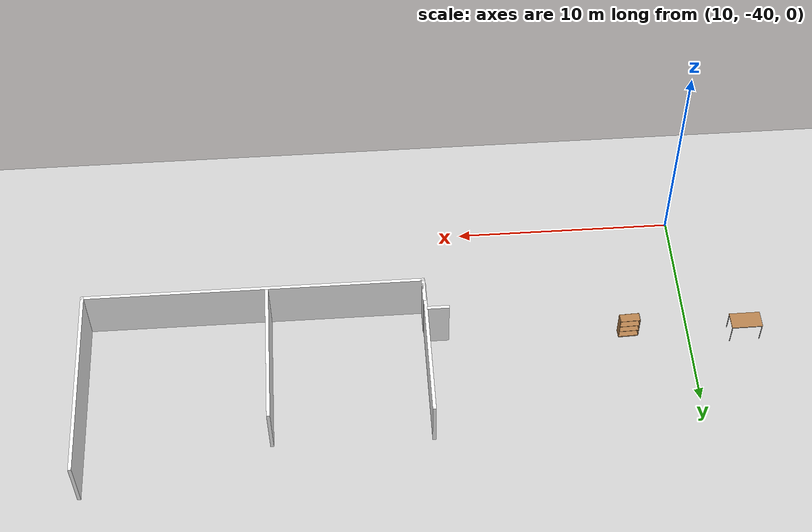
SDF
<sdf version="1.6">
 <world name="default">
  <model name="ground_plane">
   <static>1</static>
   <link name="link">
    <collision name="collision">
     <geometry><plane><normal>0 0 1</normal><size>100 100</size></plane></geometry>
     <surface><friction><ode><mu>100</mu><mu2>50</mu2></ode></friction></surface>
    </collision>
    <visual name="visual">
     <cast_shadows>0</cast_shadows>
     <geometry><plane><normal>0 0 1</normal><size>100 100</size></plane></geometry>
     <material>
      <script>
       <uri>model://office_env/materials/scripts</uri>
       <uri>model://office_env/materials/textures</uri>
       <name>wall</name>
      </script>
     </material>
    </visual>
   </link>
  </model>
  <model name="aule_N">
   <pose>0.1887 -1.4289 0 0 -0 0</pose>
   <link name="Wall_209">
    <collision name="Wall_209_Collision">
     <geometry><box><size>6.75 0.15 2.5</size></box></geometry>
     <pose>0 0 1.25 0 -0 0</pose>
    </collision>
    <visual name="Wall_209_Visual">
     <pose>0 0 1.25 0 -0 0</pose>
     <geometry><box><size>6.75 0.15 2.5</size></box></geometry>
     <material>
      <script>
       <uri>model://office_env/materials/scripts</uri>
       <uri>model://office_env/materials/textures</uri>
       <name>wall</name>
      </script>
      <ambient>1 1 1 1</ambient>
     </material>
    </visual>
    <pose>21.8408 -30.6162 0 0 0 -1.5708</pose>
   </link>
   <link name="Wall_233">
    <collision name="Wall_233_Collision">
     <geometry><box><size>15.5 0.15 2.5</size></box></geometry>
     <pose>0 0 1.25 0 -0 0</pose>
    </collision>
    <visual name="Wall_233_Visual">
     <pose>0 0 1.25 0 -0 0</pose>
     <geometry><box><size>15.5 0.15 2.5</size></box></geometry>
     <material>
      <script>
       <uri>model://office_env/materials/scripts</uri>
       <uri>model://office_env/materials/textures</uri>
       <name>wall</name>
      </script>
      <ambient>1 1 1 1</ambient>
     </material>
    </visual>
    <pose>29.5453 -34.2006 0 0 -0 3.14159</pose>
   </link>
   <link name="Wall_234">
    <collision name="Wall_234_Collision">
     <geometry><box><size>1.25 0.15 2.5</size></box></geometry>
     <pose>0 0 1.25 0 -0 0</pose>
    </collision>
    <visual name="Wall_234_Visual">
     <pose>0 0 1.25 0 -0 0</pose>
     <geometry><box><size>1.25 0.15 2.5</size></box></geometry>
     <material>
      <script>
       <uri>model://office_env/materials/scripts</uri>
       <uri>model://office_env/materials/textures</uri>
       <name>wall</name>
      </script>
      <ambient>1 1 1 1</ambient>
     </material>
    </visual>
    <pose>21.8703 -33.6506 0 0 -0 1.5708</pose>
   </link>
   <link name="Wall_236">
    <collision name="Wall_236_Collision">
     <geometry><box><size>1 0.15 2.5</size></box></geometry>
     <pose>0 0 1.25 0 -0 0</pose>
    </collision>
    <visual name="Wall_236_Visual">
     <pose>0 0 1.25 0 -0 0</pose>
     <geometry><box><size>1 0.15 2.5</size></box></geometry>
     <material>
      <script>
       <uri>model://office_env/materials/scripts</uri>
       <uri>model://office_env/materials/textures</uri>
       <name>wall</name>
      </script>
      <ambient>1 1 1 1</ambient>
     </material>
    </visual>
    <pose>21.2953 -32.6045 0 0 -0 0</pose>
   </link>
   <link name="Wall_240">
    <collision name="Wall_240_Collision">
     <geometry><box><size>6.75 0.15 2.5</size></box></geometry>
     <pose>0 0 1.25 0 -0 0</pose>
    </collision>
    <visual name="Wall_240_Visual">
     <pose>0 0 1.25 0 -0 0</pose>
     <geometry><box><size>6.75 0.15 2.5</size></box></geometry>
     <material>
      <script>
       <uri>model://office_env/materials/scripts</uri>
       <uri>model://office_env/materials/textures</uri>
       <name>wall</name>
      </script>
      <ambient>1 1 1 1</ambient>
     </material>
    </visual>
    <pose>28.9447 -30.738 0 0 0 -1.5708</pose>
   </link>
   <link name="Wall_27">
    <collision name="Wall_27_Collision">
     <geometry><box><size>8.99611 0.15 2.5</size></box></geometry>
     <pose>0 0 1.25 0 -0 0</pose>
    </collision>
    <visual name="Wall_27_Visual">
     <pose>0 0 1.25 0 -0 0</pose>
     <geometry><box><size>8.99611 0.15 2.5</size></box></geometry>
     <material>
      <script>
       <uri>model://office_env/materials/scripts</uri>
       <uri>model://office_env/materials/textures</uri>
       <name>wall</name>
      </script>
      <ambient>1 1 1 1</ambient>
     </material>
    </visual>
    <pose>37.2203 -29.7776 0 0 -0 1.5708</pose>
   </link>
   <static>1</static>
  </model>
  <model name="bookshelf_0">
   <static>1</static>
   <link name="link">
    <inertial><mass>1</mass></inertial>
    <collision name="back">
     <pose>0 0.005 0.6 0 -0 0</pose>
     <geometry><box><size>0.9 0.01 1.2</size></box></geometry>
    </collision>
    <visual name="visual1">
     <pose>0 0.005 0.6 0 -0 0</pose>
     <geometry><box><size>0.9 0.01 1.2</size></box></geometry>
     <material>
      <script><uri>file://media/materials/scripts/gazebo.material</uri><name>Gazebo/Wood</name></script>
     </material>
    </visual>
    <collision name="left_side">
     <pose>0.45 -0.195 0.6 0 -0 0</pose>
     <geometry><box><size>0.02 0.4 1.2</size></box></geometry>
    </collision>
    <visual name="visual2">
     <pose>0.45 -0.195 0.6 0 -0 0</pose>
     <geometry><box><size>0.02 0.4 1.2</size></box></geometry>
     <material>
      <script><uri>file://media/materials/scripts/gazebo.material</uri><name>Gazebo/Wood</name></script>
     </material>
    </visual>
    <collision name="right_side">
     <pose>-0.45 -0.195 0.6 0 -0 0</pose>
     <geometry><box><size>0.02 0.4 1.2</size></box></geometry>
    </collision>
    <visual name="visual3">
     <pose>-0.45 -0.195 0.6 0 -0 0</pose>
     <geometry><box><size>0.02 0.4 1.2</size></box></geometry>
     <material>
      <script><uri>file://media/materials/scripts/gazebo.material</uri><name>Gazebo/Wood</name></script>
     </material>
    </visual>
    <collision name="bottom">
     <pose>0 -0.195 0.03 0 -0 0</pose>
     <geometry><box><size>0.88 0.4 0.06</size></box></geometry>
    </collision>
    <visual name="visual4">
     <pose>0 -0.195 0.03 0 -0 0</pose>
     <geometry><box><size>0.88 0.4 0.06</size></box></geometry>
     <material>
      <script><uri>file://media/materials/scripts/gazebo.material</uri><name>Gazebo/Wood</name></script>
     </material>
    </visual>
    <collision name="top">
     <pose>0 -0.195 1.19 0 -0 0</pose>
     <geometry><box><size>0.88 0.4 0.02</size></box></geometry>
    </collision>
    <visual name="visual5">
     <pose>0 -0.195 1.19 0 -0 0</pose>
     <geometry><box><size>0.88 0.4 0.02</size></box></geometry>
     <material>
      <script><uri>file://media/materials/scripts/gazebo.material</uri><name>Gazebo/Wood</name></script>
     </material>
    </visual>
    <collision name="low_shelf">
     <pose>0 -0.195 0.43 0 -0 0</pose>
     <geometry><box><size>0.88 0.4 0.02</size></box></geometry>
    </collision>
    <visual name="visual6">
     <pose>0 -0.195 0.43 0 -0 0</pose>
     <geometry><box><size>0.88 0.4 0.02</size></box></geometry>
     <material>
      <script><uri>file://media/materials/scripts/gazebo.material</uri><name>Gazebo/Wood</name></script>
     </material>
    </visual>
    <collision name="high_shelf">
     <pose>0 -0.195 0.8 0 -0 0</pose>
     <geometry><box><size>0.88 0.4 0.02</size></box></geometry>
    </collision>
    <visual name="visual7">
     <pose>0 -0.195 0.8 0 -0 0</pose>
     <geometry><box><size>0.88 0.4 0.02</size></box></geometry>
     <material>
      <script><uri>file://media/materials/scripts/gazebo.material</uri><name>Gazebo/Wood</name></script>
     </material>
    </visual>
   </link>
   <pose>12.7495 -33.991 0 0 0 -3.1053</pose>
  </model>
  <model name="table">
   <static>0</static>
   <link name="link">
    <collision name="surface">
     <pose>0 0 1 0 -0 0</pose>
     <geometry><box><size>1.5 0.8 0.03</size></box></geometry>
     <surface><friction><ode><mu>0.6</mu><mu2>0.6</mu2></ode></friction></surface>
    </collision>
    <visual name="visual1">
     <pose>0 0 1 0 -0 0</pose>
     <geometry><box><size>1.4 0.8 0.04</size></box></geometry>
     <material>
      <script><uri>file://media/materials/scripts/gazebo.material</uri><name>Gazebo/Wood</name></script>
     </material>
    </visual>
    <collision name="front_left_leg">
     <pose>0.68 0.38 0.5 0 -0 0</pose>
     <geometry><cylinder><radius>0.02</radius><length>1</length></cylinder></geometry>
    </collision>
    <visual name="front_left_leg">
     <pose>0.68 0.38 0.5 0 -0 0</pose>
     <geometry><cylinder><radius>0.02</radius><length>1</length></cylinder></geometry>
     <material>
      <script>
       <uri>model://office_env/materials/scripts</uri>
       <uri>model://office_env/materials/textures</uri>
       <name>wall</name>
      </script>
     </material>
    </visual>
    <collision name="front_right_leg">
     <pose>0.68 -0.38 0.5 0 -0 0</pose>
     <geometry><cylinder><radius>0.02</radius><length>1</length></cylinder></geometry>
    </collision>
    <visual name="front_right_leg">
     <pose>0.68 -0.38 0.5 0 -0 0</pose>
     <geometry><cylinder><radius>0.02</radius><length>1</length></cylinder></geometry>
     <material>
      <script>
       <uri>model://office_env/materials/scripts</uri>
       <uri>model://office_env/materials/textures</uri>
       <name>wall</name>
      </script>
     </material>
    </visual>
    <collision name="back_right_leg">
     <pose>-0.68 -0.38 0.5 0 -0 0</pose>
     <geometry><cylinder><radius>0.02</radius><length>1</length></cylinder></geometry>
    </collision>
    <visual name="back_right_leg">
     <pose>-0.68 -0.38 0.5 0 -0 0</pose>
     <geometry><cylinder><radius>0.02</radius><length>1</length></cylinder></geometry>
     <material>
      <script>
       <uri>model://office_env/materials/scripts</uri>
       <uri>model://office_env/materials/textures</uri>
       <name>wall</name>
      </script>
     </material>
    </visual>
    <collision name="back_left_leg">
     <pose>-0.68 0.38 0.5 0 -0 0</pose>
     <geometry><cylinder><radius>0.02</radius><length>1</length></cylinder></geometry>
    </collision>
    <visual name="back_left_leg">
     <pose>-0.68 0.38 0.5 0 -0 0</pose>
     <geometry><cylinder><radius>0.02</radius><length>1</length></cylinder></geometry>
     <material>
      <script>
       <uri>model://office_env/materials/scripts</uri>
       <uri>model://office_env/materials/textures</uri>
       <name>wall</name>
      </script>
     </material>
    </visual>
    <inertial>
     <inertia><ixx>1</ixx><ixy>0</ixy><ixz>0</ixz><iyy>1</iyy><iyz>0</iyz><izz>1</izz></inertia>
     <mass>1</mass>
    </inertial>
   </link>
   <pose>7.45135 -33.4257 0.009992 1e-06 -0 0.009064</pose>
  </model>
 </world>
</sdf>
